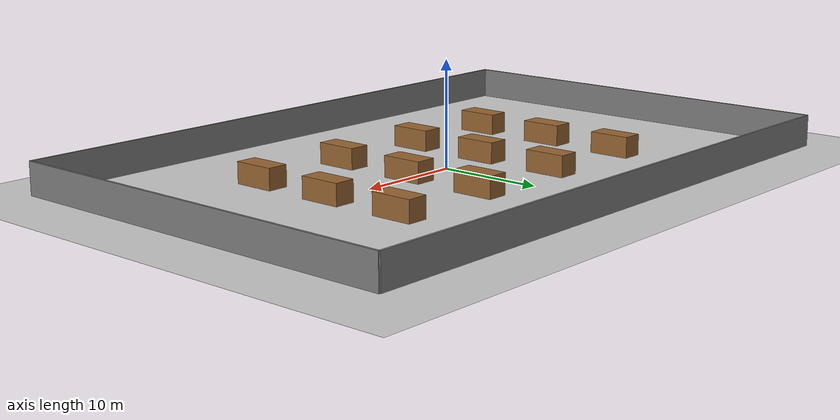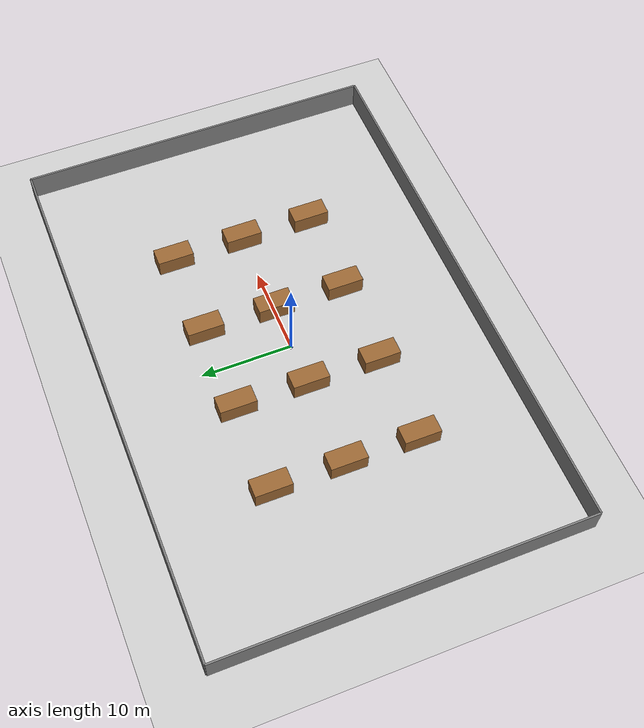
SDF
<?xml version="1.0"?>
<sdf version="1.6">
  <world name="warehouse">
    <!-- Physics engine -->
    <physics name="default_physics" default="true" type="ode">
      <max_step_size>0.001</max_step_size>
      <real_time_factor>1.0</real_time_factor>
    </physics>

    <!-- Lighting -->
    <light name="sun" type="directional">
      <pose>0 0 10 0 0 0</pose>
      <diffuse>0.8 0.8 0.8 1</diffuse>
      <specular>0.2 0.2 0.2 1</specular>
      <direction>0.3 0.3 -1</direction>
    </light>

    <!-- Ground plane -->
    <model name="ground_plane">
      <static>true</static>
      <link name="link">
        <collision name="collision">
          <geometry>
            <plane>
              <normal>0 0 1</normal>
              <size>100 100</size>
            </plane>
          </geometry>
        </collision>
        <visual name="visual">
          <geometry>
            <plane>
              <normal>0 0 1</normal>
              <size>100 100</size>
            </plane>
          </geometry>
          <material>
            <ambient>0.8 0.8 0.8 1</ambient>
            <diffuse>0.8 0.8 0.8 1</diffuse>
            <specular>0.5 0.5 0.5 1</specular>
          </material>
        </visual>
      </link>
    </model>

    <!-- Boundary walls -->
    <!-- North wall -->
    <model name="wall_north">
      <static>true</static>
      <link name="link">
        <collision name="collision">
          <geometry>
            <box><size>60 0.2 3</size></box>
          </geometry>
        </collision>
        <visual name="visual">
          <geometry>
            <box><size>60 0.2 3</size></box>
          </geometry>
          <material>
            <ambient>0.5 0.5 0.5 1</ambient>
            <diffuse>0.5 0.5 0.5 1</diffuse>
          </material>
        </visual>
      </link>
      <pose>0 20 1.5 0 0 0</pose>
    </model>

    <!-- South wall -->
    <model name="wall_south">
      <static>true</static>
      <link name="link">
        <collision name="collision">
          <geometry>
            <box><size>60 0.2 3</size></box>
          </geometry>
        </collision>
        <visual name="visual">
          <geometry>
            <box><size>60 0.2 3</size></box>
          </geometry>
          <material>
            <ambient>0.5 0.5 0.5 1</ambient>
            <diffuse>0.5 0.5 0.5 1</diffuse>
          </material>
        </visual>
      </link>
      <pose>0 -20 1.5 0 0 0</pose>
    </model>

    <!-- East wall -->
    <model name="wall_east">
      <static>true</static>
      <link name="link">
        <collision name="collision">
          <geometry>
            <box><size>0.2 40 3</size></box>
          </geometry>
        </collision>
        <visual name="visual">
          <geometry>
            <box><size>0.2 40 3</size></box>
          </geometry>
          <material>
            <ambient>0.5 0.5 0.5 1</ambient>
            <diffuse>0.5 0.5 0.5 1</diffuse>
          </material>
        </visual>
      </link>
      <pose>30 0 1.5 0 0 0</pose>
    </model>

    <!-- West wall -->
    <model name="wall_west">
      <static>true</static>
      <link name="link">
        <collision name="collision">
          <geometry>
            <box><size>0.2 40 3</size></box>
          </geometry>
        </collision>
        <visual name="visual">
          <geometry>
            <box><size>0.2 40 3</size></box>
          </geometry>
          <material>
            <ambient>0.5 0.5 0.5 1</ambient>
            <diffuse>0.5 0.5 0.5 1</diffuse>
          </material>
        </visual>
      </link>
      <pose>-30 0 1.5 0 0 0</pose>
    </model>

    <!-- Warehouse shelves - Aisle 1 (y = -8) -->
    <model name="shelf_1_1">
      <static>true</static>
      <link name="link">
        <collision name="collision">
          <geometry><box><size>2 4 2</size></box></geometry>
        </collision>
        <visual name="visual">
          <geometry><box><size>2 4 2</size></box></geometry>
          <material>
            <ambient>0.6 0.4 0.2 1</ambient>
            <diffuse>0.6 0.4 0.2 1</diffuse>
          </material>
        </visual>
      </link>
      <pose>-15 -8 1 0 0 0</pose>
    </model>

    <model name="shelf_1_2">
      <static>true</static>
      <link name="link">
        <collision name="collision">
          <geometry><box><size>2 4 2</size></box></geometry>
        </collision>
        <visual name="visual">
          <geometry><box><size>2 4 2</size></box></geometry>
          <material>
            <ambient>0.6 0.4 0.2 1</ambient>
            <diffuse>0.6 0.4 0.2 1</diffuse>
          </material>
        </visual>
      </link>
      <pose>-5 -8 1 0 0 0</pose>
    </model>

    <model name="shelf_1_3">
      <static>true</static>
      <link name="link">
        <collision name="collision">
          <geometry><box><size>2 4 2</size></box></geometry>
        </collision>
        <visual name="visual">
          <geometry><box><size>2 4 2</size></box></geometry>
          <material>
            <ambient>0.6 0.4 0.2 1</ambient>
            <diffuse>0.6 0.4 0.2 1</diffuse>
          </material>
        </visual>
      </link>
      <pose>5 -8 1 0 0 0</pose>
    </model>

    <model name="shelf_1_4">
      <static>true</static>
      <link name="link">
        <collision name="collision">
          <geometry><box><size>2 4 2</size></box></geometry>
        </collision>
        <visual name="visual">
          <geometry><box><size>2 4 2</size></box></geometry>
          <material>
            <ambient>0.6 0.4 0.2 1</ambient>
            <diffuse>0.6 0.4 0.2 1</diffuse>
          </material>
        </visual>
      </link>
      <pose>15 -8 1 0 0 0</pose>
    </model>

    <!-- Warehouse shelves - Aisle 2 (y = 0) -->
    <model name="shelf_2_1">
      <static>true</static>
      <link name="link">
        <collision name="collision">
          <geometry><box><size>2 4 2</size></box></geometry>
        </collision>
        <visual name="visual">
          <geometry><box><size>2 4 2</size></box></geometry>
          <material>
            <ambient>0.6 0.4 0.2 1</ambient>
            <diffuse>0.6 0.4 0.2 1</diffuse>
          </material>
        </visual>
      </link>
      <pose>-15 0 1 0 0 0</pose>
    </model>

    <model name="shelf_2_2">
      <static>true</static>
      <link name="link">
        <collision name="collision">
          <geometry><box><size>2 4 2</size></box></geometry>
        </collision>
        <visual name="visual">
          <geometry><box><size>2 4 2</size></box></geometry>
          <material>
            <ambient>0.6 0.4 0.2 1</ambient>
            <diffuse>0.6 0.4 0.2 1</diffuse>
          </material>
        </visual>
      </link>
      <pose>-5 0 1 0 0 0</pose>
    </model>

    <model name="shelf_2_3">
      <static>true</static>
      <link name="link">
        <collision name="collision">
          <geometry><box><size>2 4 2</size></box></geometry>
        </collision>
        <visual name="visual">
          <geometry><box><size>2 4 2</size></box></geometry>
          <material>
            <ambient>0.6 0.4 0.2 1</ambient>
            <diffuse>0.6 0.4 0.2 1</diffuse>
          </material>
        </visual>
      </link>
      <pose>5 0 1 0 0 0</pose>
    </model>

    <model name="shelf_2_4">
      <static>true</static>
      <link name="link">
        <collision name="collision">
          <geometry><box><size>2 4 2</size></box></geometry>
        </collision>
        <visual name="visual">
          <geometry><box><size>2 4 2</size></box></geometry>
          <material>
            <ambient>0.6 0.4 0.2 1</ambient>
            <diffuse>0.6 0.4 0.2 1</diffuse>
          </material>
        </visual>
      </link>
      <pose>15 0 1 0 0 0</pose>
    </model>

    <!-- Warehouse shelves - Aisle 3 (y = 8) -->
    <model name="shelf_3_1">
      <static>true</static>
      <link name="link">
        <collision name="collision">
          <geometry><box><size>2 4 2</size></box></geometry>
        </collision>
        <visual name="visual">
          <geometry><box><size>2 4 2</size></box></geometry>
          <material>
            <ambient>0.6 0.4 0.2 1</ambient>
            <diffuse>0.6 0.4 0.2 1</diffuse>
          </material>
        </visual>
      </link>
      <pose>-15 8 1 0 0 0</pose>
    </model>

    <model name="shelf_3_2">
      <static>true</static>
      <link name="link">
        <collision name="collision">
          <geometry><box><size>2 4 2</size></box></geometry>
        </collision>
        <visual name="visual">
          <geometry><box><size>2 4 2</size></box></geometry>
          <material>
            <ambient>0.6 0.4 0.2 1</ambient>
            <diffuse>0.6 0.4 0.2 1</diffuse>
          </material>
        </visual>
      </link>
      <pose>-5 8 1 0 0 0</pose>
    </model>

    <model name="shelf_3_3">
      <static>true</static>
      <link name="link">
        <collision name="collision">
          <geometry><box><size>2 4 2</size></box></geometry>
        </collision>
        <visual name="visual">
          <geometry><box><size>2 4 2</size></box></geometry>
          <material>
            <ambient>0.6 0.4 0.2 1</ambient>
            <diffuse>0.6 0.4 0.2 1</diffuse>
          </material>
        </visual>
      </link>
      <pose>5 8 1 0 0 0</pose>
    </model>

    <model name="shelf_3_4">
      <static>true</static>
      <link name="link">
        <collision name="collision">
          <geometry><box><size>2 4 2</size></box></geometry>
        </collision>
        <visual name="visual">
          <geometry><box><size>2 4 2</size></box></geometry>
          <material>
            <ambient>0.6 0.4 0.2 1</ambient>
            <diffuse>0.6 0.4 0.2 1</diffuse>
          </material>
        </visual>
      </link>
      <pose>15 8 1 0 0 0</pose>
    </model>

    <!-- Robot model (embedded directly in world) -->
    <model name="warehouse_robot">
      <pose>0 0 0 0 0 0</pose>
      <link name="base_link">
        <inertial>
          <mass>5.0</mass>
          <inertia>
            <ixx>0.05</ixx>
            <ixy>0</ixy>
            <ixz>0</ixz>
            <iyy>0.05</iyy>
            <iyz>0</iyz>
            <izz>0.1</izz>
          </inertia>
        </inertial>
        <collision name="base_collision">
          <geometry>
            <cylinder>
              <radius>0.25</radius>
              <length>0.3</length>
            </cylinder>
          </geometry>
        </collision>
        <visual name="base_visual">
          <geometry>
            <cylinder>
              <radius>0.25</radius>
              <length>0.3</length>
            </cylinder>
          </geometry>
          <material>
            <ambient>0.2 0.4 0.8 1</ambient>
            <diffuse>0.2 0.4 0.8 1</diffuse>
          </material>
        </visual>
      </link>

      <!-- Left wheel -->
      <link name="left_wheel">
        <inertial>
          <mass>0.5</mass>
          <inertia>
            <ixx>0.01</ixx>
            <ixy>0</ixy>
            <ixz>0</ixz>
            <iyy>0.01</iyy>
            <iyz>0</iyz>
            <izz>0.01</izz>
          </inertia>
        </inertial>
        <collision name="collision">
          <geometry>
            <cylinder>
              <radius>0.1</radius>
              <length>0.05</length>
            </cylinder>
          </geometry>
        </collision>
        <visual name="visual">
          <geometry>
            <cylinder>
              <radius>0.1</radius>
              <length>0.05</length>
            </cylinder>
          </geometry>
          <material>
            <ambient>0.1 0.1 0.1 1</ambient>
            <diffuse>0.1 0.1 0.1 1</diffuse>
          </material>
        </visual>
      </link>

      <!-- Right wheel -->
      <link name="right_wheel">
        <inertial>
          <mass>0.5</mass>
          <inertia>
            <ixx>0.01</ixx>
            <ixy>0</ixy>
            <ixz>0</ixz>
            <iyy>0.01</iyy>
            <iyz>0</iyz>
            <izz>0.01</izz>
          </inertia>
        </inertial>
        <collision name="collision">
          <geometry>
            <cylinder>
              <radius>0.1</radius>
              <length>0.05</length>
            </cylinder>
          </geometry>
        </collision>
        <visual name="visual">
          <geometry>
            <cylinder>
              <radius>0.1</radius>
              <length>0.05</length>
            </cylinder>
          </geometry>
          <material>
            <ambient>0.1 0.1 0.1 1</ambient>
            <diffuse>0.1 0.1 0.1 1</diffuse>
          </material>
        </visual>
      </link>

      <!-- Camera link -->
      <link name="camera_link">
        <inertial>
          <mass>0.1</mass>
          <inertia>
            <ixx>0.001</ixx>
            <ixy>0</ixy>
            <ixz>0</ixz>
            <iyy>0.001</iyy>
            <iyz>0</iyz>
            <izz>0.001</izz>
          </inertia>
        </inertial>
        <visual name="visual">
          <geometry>
            <box><size>0.05 0.05 0.05</size></box>
          </geometry>
          <material>
            <ambient>0.2 0.8 0.2 1</ambient>
            <diffuse>0.2 0.8 0.2 1</diffuse>
          </material>
        </visual>
        <sensor name="camera" type="camera">
          <camera>
            <horizontal_fov>1.047</horizontal_fov>
            <image>
              <width>640</width>
              <height>480</height>
            </image>
            <clip>
              <near>0.1</near>
              <far>100</far>
            </clip>
          </camera>
          <always_on>1</always_on>
          <update_rate>30</update_rate>
          <plugin name="camera_controller" filename="libgazebo_ros_camera.so">
            <ros>
              <namespace>camera</namespace>
              <remapping>image_raw:=image_raw</remapping>
              <remapping>camera_info:=camera_info</remapping>
            </ros>
          </plugin>
        </sensor>
      </link>

      <!-- LiDAR link -->
      <link name="lidar_link">
        <inertial>
          <mass>0.1</mass>
          <inertia>
            <ixx>0.001</ixx>
            <ixy>0</ixy>
            <ixz>0</ixz>
            <iyy>0.001</iyy>
            <iyz>0</iyz>
            <izz>0.001</izz>
          </inertia>
        </inertial>
        <visual name="visual">
          <geometry>
            <cylinder>
              <radius>0.05</radius>
              <length>0.1</length>
            </cylinder>
          </geometry>
          <material>
            <ambient>0.8 0.2 0.2 1</ambient>
            <diffuse>0.8 0.2 0.2 1</diffuse>
          </material>
        </visual>
        <sensor name="lidar" type="ray">
          <pose>0 0 0 0 0 0</pose>
          <ray>
            <scan>
              <horizontal>
                <samples>360</samples>
                <resolution>1</resolution>
                <min_angle>-3.14159</min_angle>
                <max_angle>3.14159</max_angle>
              </horizontal>
            </scan>
            <range>
              <min>0.1</min>
              <max>30</max>
              <resolution>0.01</resolution>
            </range>
          </ray>
          <always_on>1</always_on>
          <update_rate>10</update_rate>
          <plugin name="lidar_controller" filename="libgazebo_ros_ray_sensor.so">
            <ros>
              <namespace>lidar</namespace>
              <remapping>scan:=scan</remapping>
            </ros>
            <output_type>sensor_msgs/LaserScan</output_type>
          </plugin>
        </sensor>
      </link>

      <!-- IMU link -->
      <link name="imu_link">
        <inertial>
          <mass>0.05</mass>
          <inertia>
            <ixx>0.0001</ixx>
            <ixy>0</ixy>
            <ixz>0</ixz>
            <iyy>0.0001</iyy>
            <iyz>0</iyz>
            <izz>0.0001</izz>
          </inertia>
        </inertial>
        <sensor name="imu" type="imu">
          <always_on>1</always_on>
          <update_rate>50</update_rate>
          <plugin name="imu_controller" filename="libgazebo_ros_imu_sensor.so">
            <ros>
              <namespace>imu</namespace>
              <remapping>imu:=data</remapping>
            </ros>
            <initial_orientation_as_reference>false</initial_orientation_as_reference>
          </plugin>
        </sensor>
      </link>

      <!-- Joints -->
      <joint name="left_wheel_joint" type="revolute">
        <parent>base_link</parent>
        <child>left_wheel</child>
        <axis>
          <xyz>0 1 0</xyz>
          <dynamics>
            <damping>0.01</damping>
          </dynamics>
        </axis>
        <pose>-0.15 0.15 0 0 0 0</pose>
        <limit>
          <lower>-1e16</lower>
          <upper>1e16</upper>
        </limit>
      </joint>

      <joint name="right_wheel_joint" type="revolute">
        <parent>base_link</parent>
        <child>right_wheel</child>
        <axis>
          <xyz>0 1 0</xyz>
          <dynamics>
            <damping>0.01</damping>
          </dynamics>
        </axis>
        <pose>-0.15 -0.15 0 0 0 0</pose>
        <limit>
          <lower>-1e16</lower>
          <upper>1e16</upper>
        </limit>
      </joint>

      <joint name="camera_joint" type="fixed">
        <parent>base_link</parent>
        <child>camera_link</child>
        <pose>0.15 0 0.2 0 0 0</pose>
      </joint>

      <joint name="lidar_joint" type="fixed">
        <parent>base_link</parent>
        <child>lidar_link</child>
        <pose>0 0 0.25 0 0 0</pose>
      </joint>

      <joint name="imu_joint" type="fixed">
        <parent>base_link</parent>
        <child>imu_link</child>
      </joint>

      <!-- Differential drive plugin -->
      <plugin name="gazebo_ros_diff_drive" filename="libgazebo_ros_diff_drive.so">
        <ros>
          <namespace>robot</namespace>
          <remapping>cmd_vel:=cmd_vel</remapping>
          <remapping>odom:=odom</remapping>
        </ros>
        <left_joint>left_wheel_joint</left_joint>
        <right_joint>right_wheel_joint</right_joint>
        <wheel_separation>0.3</wheel_separation>
        <wheel_diameter>0.2</wheel_diameter>
        <max_wheel_torque>10</max_wheel_torque>
        <max_wheel_acceleration>2.0</max_wheel_acceleration>
        <odometry_frame>odom</odometry_frame>
        <robot_base_frame>base_link</robot_base_frame>
        <odometry_topic>odom</odometry_topic>
        <publish_odom>true</publish_odom>
        <publish_odom_tf>true</publish_odom_tf>
      </plugin>
    </model>

  </world>
</sdf>
